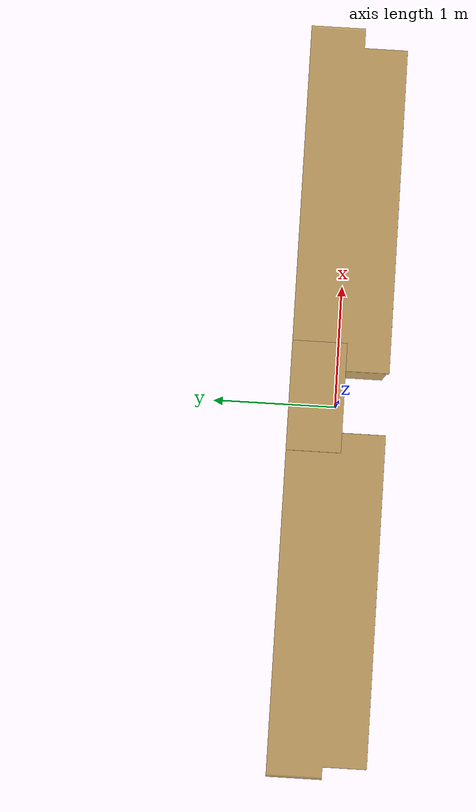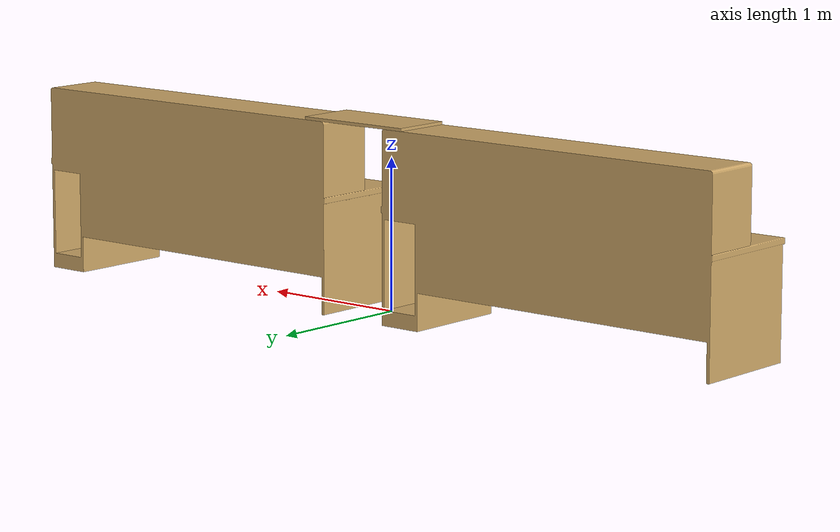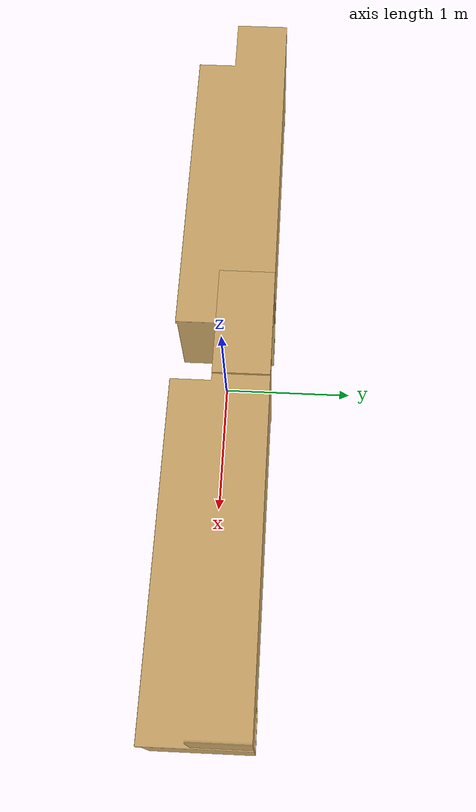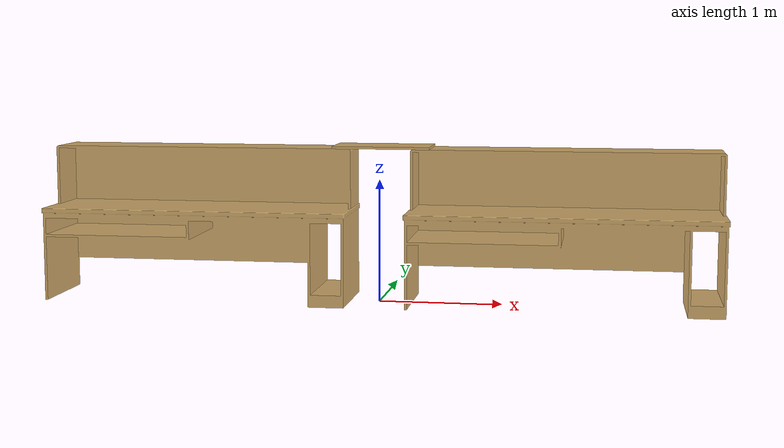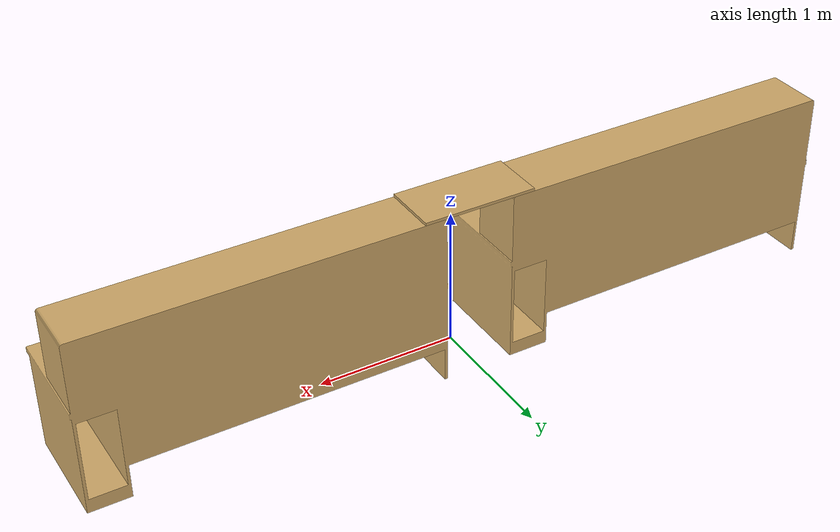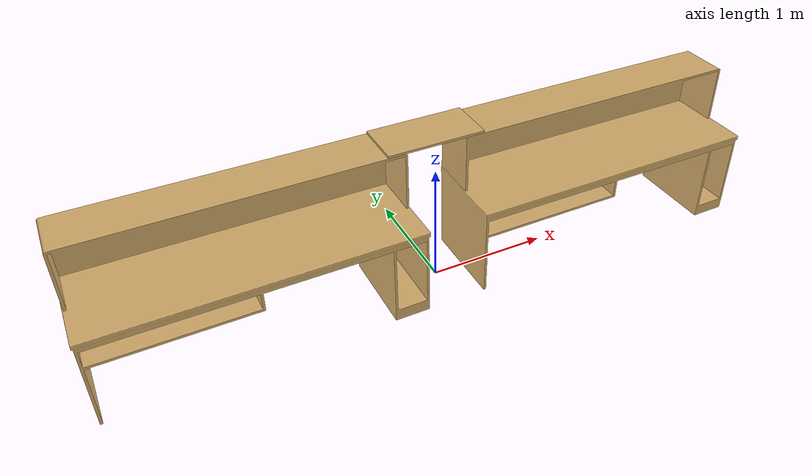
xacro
<?xml version="1.0" encoding="utf-8"?>
<robot name="lab_table" xmlns:xacro="http://www.ros.org/wiki/xacro">
  <link
    name="table_top">
    <inertial>
      <origin
        xyz="0.063083 0.069652 0.6734"
        rpy="0 0 0" />
      <mass
        value="344.69" />
      <inertia
        ixx="46.88"
        ixy="2.3242"
        ixz="16.734"
        iyy="257.8"
        iyz="-4.2747"
        izz="247.66" />
    </inertial>
    <visual>
      <origin
        xyz="0 0 0"
        rpy="0 0 0" />
      <geometry>
        <mesh
          filename="package://daadbot_desc/meshes_lab_table/base_link.STL" />
      </geometry>
      <material
        name="">
        <color
          rgba="0.81 0.66 0.41 1" />
      </material>
    </visual>
    <collision>
      <origin
        xyz="0 0 0"
        rpy="0 0 0" />
      <geometry>
        <mesh
          filename="package://daadbot_desc/meshes_lab_table/base_link.STL" />
      </geometry>
    </collision>
  </link>
  <link
    name="table_link1">
    <inertial>
      <origin
        xyz="0 0.0099214 -2.2204E-16"
        rpy="0 0 0" />
      <mass
        value="3.8002" />
      <inertia
        ixx="0.051284"
        ixy="4.5561E-20"
        ixz="-2.1258E-18"
        iyy="0.25592"
        iyz="-1.7014E-16"
        izz="0.20488" />
    </inertial>
    <visual>
      <origin
        xyz="0 0 0"
        rpy="0 0 0" />
      <geometry>
        <mesh
          filename="package://daadbot_desc/meshes_lab_table/link1.STL" />
      </geometry>
      <material
        name="">
        <color
          rgba="0.81 0.66 0.41 1" />
      </material>
    </visual>
    <collision>
      <origin
        xyz="0 0 0"
        rpy="0 0 0" />
      <geometry>
        <mesh
          filename="package://daadbot_desc/meshes_lab_table/link1.STL" />
      </geometry>
    </collision>
  </link>
  <joint
    name="jnt1"
    type="fixed">
    <origin
      xyz="0.005 0.1725 1.27"
      rpy="-1.5708 0 3.1416" />
    <parent
      link="table_top" />
    <child
      link="table_link1" />
    <axis
      xyz="0 0 0" />
  </joint>
</robot>
